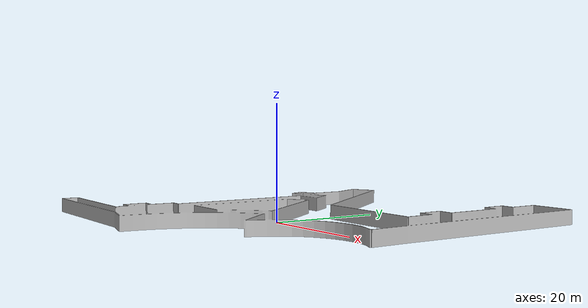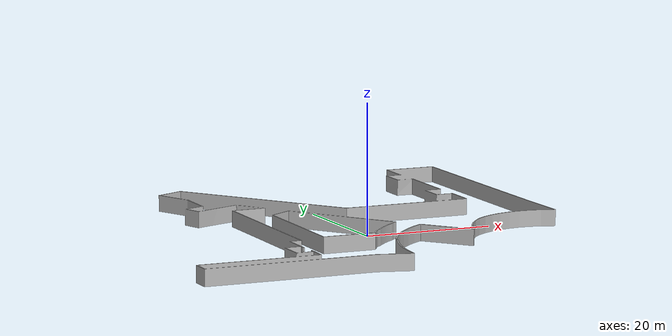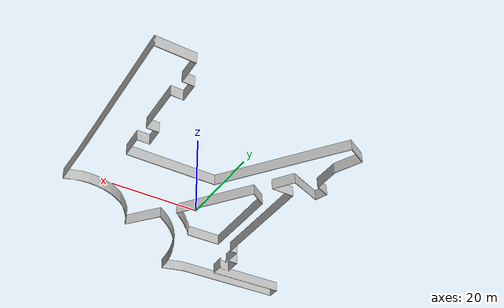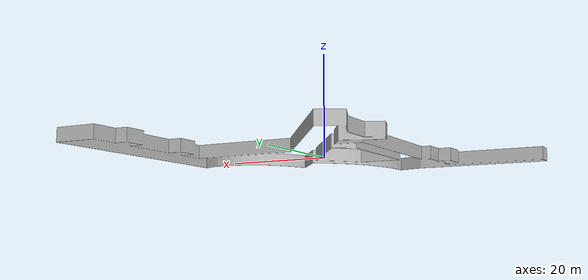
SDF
<?xml version="1.0" ?>
<sdf version="1.6">
  <model name="cw4">
    <static>true</static> <link name="link">
      <collision name="collision">
        <geometry>
          <mesh>
            <uri>model://dupa/meshes/mapa.stl</uri>
            <scale>1 1 1</scale>
          </mesh>
        </geometry>
      </collision>
      <visual name="visual">
        <geometry>
          <mesh>
            <uri>model://dupa/meshes/mapa.stl</uri>
            <scale>1 1 1</scale>
          </mesh>
        </geometry>
      </visual>
    </link>
  </model>
</sdf>
